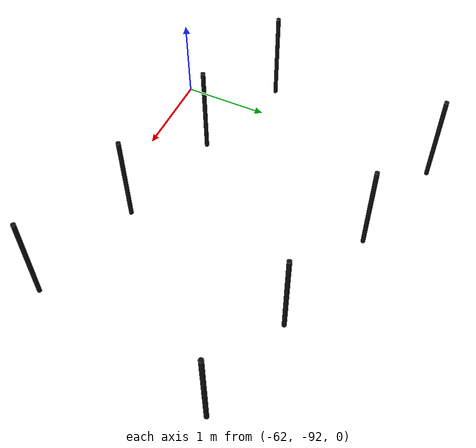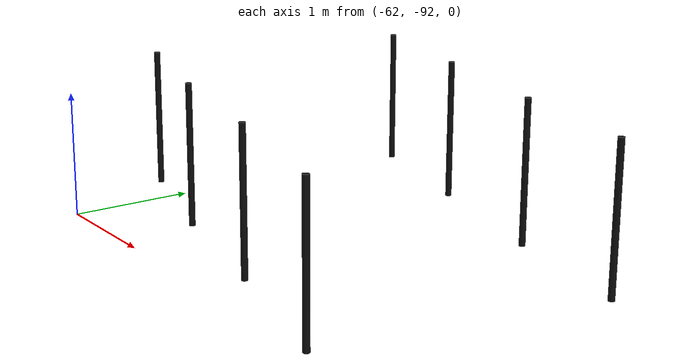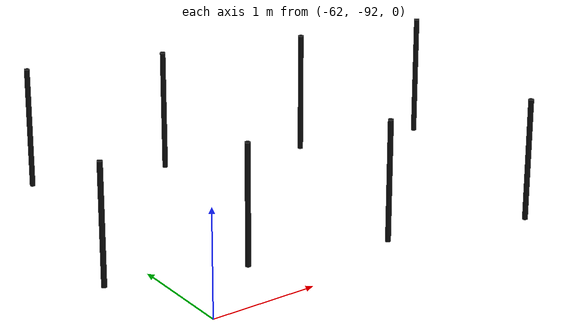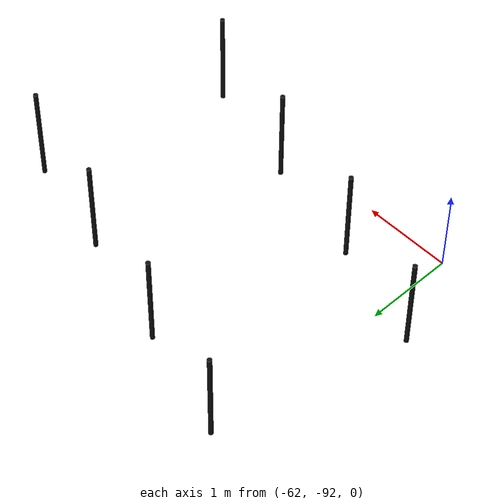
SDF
<sdf version="1.4">
 <world name="default">
  <include><uri>model://sun</uri></include>
  <model name="pole_1971">
   <static>1</static>
   <pose>-62.425 -91.000 0.575 0.0 0.0 0.0</pose>
   <link name="link">
    <collision name="collision">
     <geometry><cylinder><length>1.15</length><radius>0.025</radius></cylinder></geometry>
    </collision>
    <visual name="visual">
     <geometry><cylinder><length>1.15</length><radius>0.025</radius></cylinder></geometry>
     <material>
      <script><uri>file://media/materials/scripts/gazebo.material</uri><name>Gazebo/Chrome</name></script>
      <shader type="vertex"><normal_map>__default__</normal_map></shader>
      <emissive>0.1 0.1 0.1 1</emissive>
      <specular>0.01 0.01 0.01 1</specular>
      <ambient>0.5 0.5 0.5 1</ambient>
      <diffuse>0.05 0.05 0.05 1</diffuse>
     </material>
    </visual>
   </link>
  </model>
  <model name="pole_1972">
   <static>1</static>
   <pose>-61.908 -88.856 0.575 0.0 0.0 0.0</pose>
   <link name="link">
    <collision name="collision">
     <geometry><cylinder><length>1.15</length><radius>0.025</radius></cylinder></geometry>
    </collision>
    <visual name="visual">
     <geometry><cylinder><length>1.15</length><radius>0.025</radius></cylinder></geometry>
     <material>
      <script><uri>file://media/materials/scripts/gazebo.material</uri><name>Gazebo/Chrome</name></script>
      <shader type="vertex"><normal_map>__default__</normal_map></shader>
      <emissive>0.1 0.1 0.1 1</emissive>
      <specular>0.01 0.01 0.01 1</specular>
      <ambient>0.5 0.5 0.5 1</ambient>
      <diffuse>0.05 0.05 0.05 1</diffuse>
     </material>
    </visual>
   </link>
  </model>
  <model name="pole_2053">
   <static>1</static>
   <pose>-61.225 -91.375 0.575 0.0 0.0 0.0</pose>
   <link name="link">
    <collision name="collision">
     <geometry><cylinder><length>1.15</length><radius>0.025</radius></cylinder></geometry>
    </collision>
    <visual name="visual">
     <geometry><cylinder><length>1.15</length><radius>0.025</radius></cylinder></geometry>
     <material>
      <script><uri>file://media/materials/scripts/gazebo.material</uri><name>Gazebo/Chrome</name></script>
      <shader type="vertex"><normal_map>__default__</normal_map></shader>
      <emissive>0.1 0.1 0.1 1</emissive>
      <specular>0.01 0.01 0.01 1</specular>
      <ambient>0.5 0.5 0.5 1</ambient>
      <diffuse>0.05 0.05 0.05 1</diffuse>
     </material>
    </visual>
   </link>
  </model>
  <model name="pole_2054">
   <static>1</static>
   <pose>-60.679 -89.204 0.575 0.0 0.0 0.0</pose>
   <link name="link">
    <collision name="collision">
     <geometry><cylinder><length>1.15</length><radius>0.025</radius></cylinder></geometry>
    </collision>
    <visual name="visual">
     <geometry><cylinder><length>1.15</length><radius>0.025</radius></cylinder></geometry>
     <material>
      <script><uri>file://media/materials/scripts/gazebo.material</uri><name>Gazebo/Chrome</name></script>
      <shader type="vertex"><normal_map>__default__</normal_map></shader>
      <emissive>0.1 0.1 0.1 1</emissive>
      <specular>0.01 0.01 0.01 1</specular>
      <ambient>0.5 0.5 0.5 1</ambient>
      <diffuse>0.05 0.05 0.05 1</diffuse>
     </material>
    </visual>
   </link>
  </model>
  <model name="pole_2135">
   <static>1</static>
   <pose>-59.954 -91.678 0.575 0.0 0.0 0.0</pose>
   <link name="link">
    <collision name="collision">
     <geometry><cylinder><length>1.15</length><radius>0.025</radius></cylinder></geometry>
    </collision>
    <visual name="visual">
     <geometry><cylinder><length>1.15</length><radius>0.025</radius></cylinder></geometry>
     <material>
      <script><uri>file://media/materials/scripts/gazebo.material</uri><name>Gazebo/Chrome</name></script>
      <shader type="vertex"><normal_map>__default__</normal_map></shader>
      <emissive>0.1 0.1 0.1 1</emissive>
      <specular>0.01 0.01 0.01 1</specular>
      <ambient>0.5 0.5 0.5 1</ambient>
      <diffuse>0.05 0.05 0.05 1</diffuse>
     </material>
    </visual>
   </link>
  </model>
  <model name="pole_2136">
   <static>1</static>
   <pose>-59.375 -89.575 0.575 0.0 0.0 0.0</pose>
   <link name="link">
    <collision name="collision">
     <geometry><cylinder><length>1.15</length><radius>0.025</radius></cylinder></geometry>
    </collision>
    <visual name="visual">
     <geometry><cylinder><length>1.15</length><radius>0.025</radius></cylinder></geometry>
     <material>
      <script><uri>file://media/materials/scripts/gazebo.material</uri><name>Gazebo/Chrome</name></script>
      <shader type="vertex"><normal_map>__default__</normal_map></shader>
      <emissive>0.1 0.1 0.1 1</emissive>
      <specular>0.01 0.01 0.01 1</specular>
      <ambient>0.5 0.5 0.5 1</ambient>
      <diffuse>0.05 0.05 0.05 1</diffuse>
     </material>
    </visual>
   </link>
  </model>
  <model name="pole_2217">
   <static>1</static>
   <pose>-58.675 -92.025 0.575 0.0 0.0 0.0</pose>
   <link name="link">
    <collision name="collision">
     <geometry><cylinder><length>1.15</length><radius>0.025</radius></cylinder></geometry>
    </collision>
    <visual name="visual">
     <geometry><cylinder><length>1.15</length><radius>0.025</radius></cylinder></geometry>
     <material>
      <script><uri>file://media/materials/scripts/gazebo.material</uri><name>Gazebo/Chrome</name></script>
      <shader type="vertex"><normal_map>__default__</normal_map></shader>
      <emissive>0.1 0.1 0.1 1</emissive>
      <specular>0.01 0.01 0.01 1</specular>
      <ambient>0.5 0.5 0.5 1</ambient>
      <diffuse>0.05 0.05 0.05 1</diffuse>
     </material>
    </visual>
   </link>
  </model>
  <model name="pole_2218">
   <static>1</static>
   <pose>-58.200 -89.850 0.575 0.0 0.0 0.0</pose>
   <link name="link">
    <collision name="collision">
     <geometry><cylinder><length>1.15</length><radius>0.025</radius></cylinder></geometry>
    </collision>
    <visual name="visual">
     <geometry><cylinder><length>1.15</length><radius>0.025</radius></cylinder></geometry>
     <material>
      <script><uri>file://media/materials/scripts/gazebo.material</uri><name>Gazebo/Chrome</name></script>
      <shader type="vertex"><normal_map>__default__</normal_map></shader>
      <emissive>0.1 0.1 0.1 1</emissive>
      <specular>0.01 0.01 0.01 1</specular>
      <ambient>0.5 0.5 0.5 1</ambient>
      <diffuse>0.05 0.05 0.05 1</diffuse>
     </material>
    </visual>
   </link>
  </model>
 </world>
</sdf>
